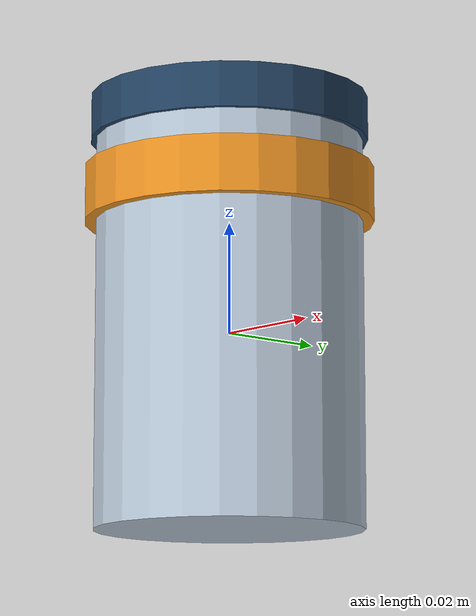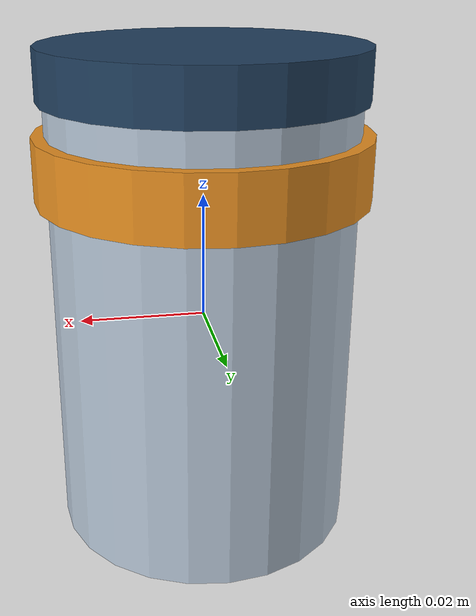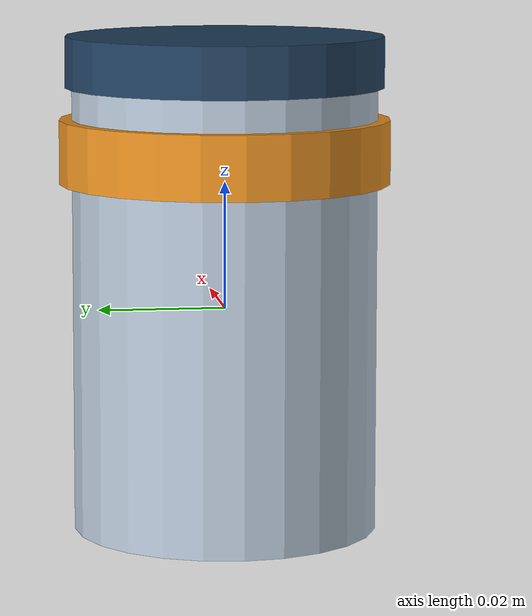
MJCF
<mujoco model="sealed_space_cartridge">
  <compiler angle="radian"/>
  <worldbody>
    <body name="base">
      <inertial mass="0.1" pos="0 0 0" diaginertia="0.00007 0.00007 0.00003"/>
      <geom name="shell" type="cylinder" size="0.024 0.035" rgba="0.7 0.76 0.82 1" friction="0.8 0.01 0.001"/>
      <geom name="cap" type="cylinder" pos="0 0 0.039" size="0.025 0.004" rgba="0.13 0.25 0.37 1"/>
      <geom name="grip_ring" type="cylinder" pos="0 0 0.025" size="0.026 0.005" rgba="0.9 0.56 0.13 1"/>
      <site name="grasp" type="sphere" size="0.005" group="3"/>
    </body>
  </worldbody>
</mujoco>
